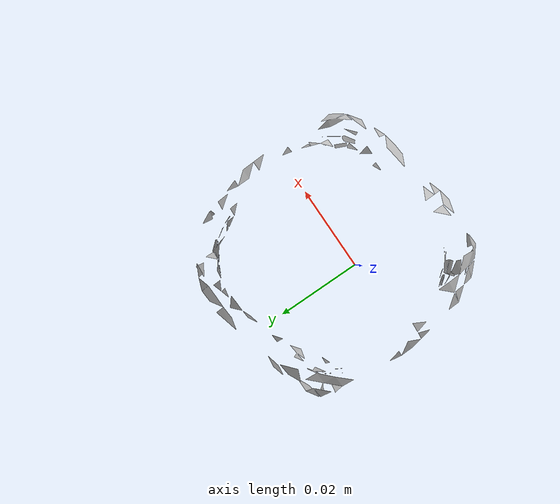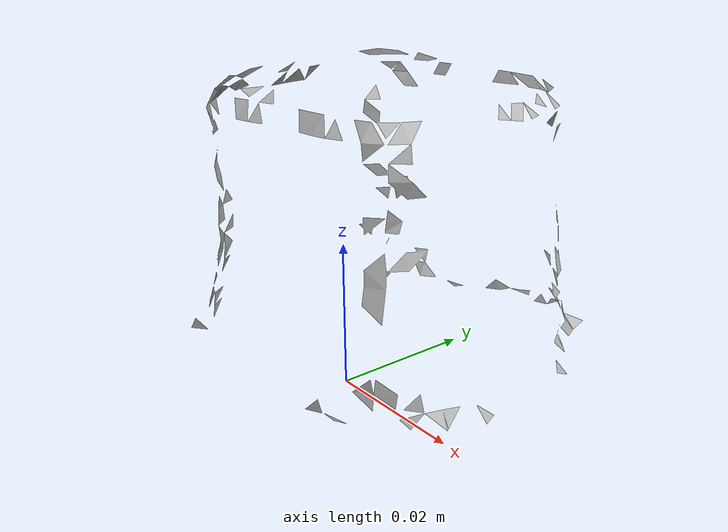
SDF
<?xml version='1.0'?>
<sdf version="1.4">
  <model name="k_lego_duplo">
    <static>false</static>
    <link name="link">
      <inertial>
        <pose>0.004827813203101925 0.003785804593448145 0.025619740966388242 -0.8830869970793133 -1.4886234419041444 1.6497792724960882</pose>
        <mass>4.478730402956973e-05</mass>
        <inertia>
          <ixx>9.441841399540531e-09</ixx>
          <ixy>-5.33286973672801e-26</ixy>
          <ixz>-2.3742319941591197e-25</ixz>
          <iyy>6.875351963781806e-09</iyy>
          <iyz>-1.038335006900242e-24</iyz>
          <izz>6.722066031931906e-09</izz>
        </inertia>
      </inertial>
      <collision name="collision">
        <geometry>
          <mesh>
            <!-- Use a downsampled mesh for collisions -->
            <uri>model://073-k_lego_duplo/tsdf/textured.obj</uri>
	        </mesh>
        </geometry>
        <surface>
      </surface>
      </collision>
      <visual name="visual">
        <geometry>
          <mesh>
            <uri>model://073-k_lego_duplo/tsdf/textured.obj</uri>
	        </mesh>
        </geometry>
        <material>
          <script>
            <uri>model://073-k_lego_duplo/k_lego_duplo.material</uri>
            <name>k_lego_duplo</name>
          </script>
        </material>
      </visual>
    </link>
  </model>
</sdf>
